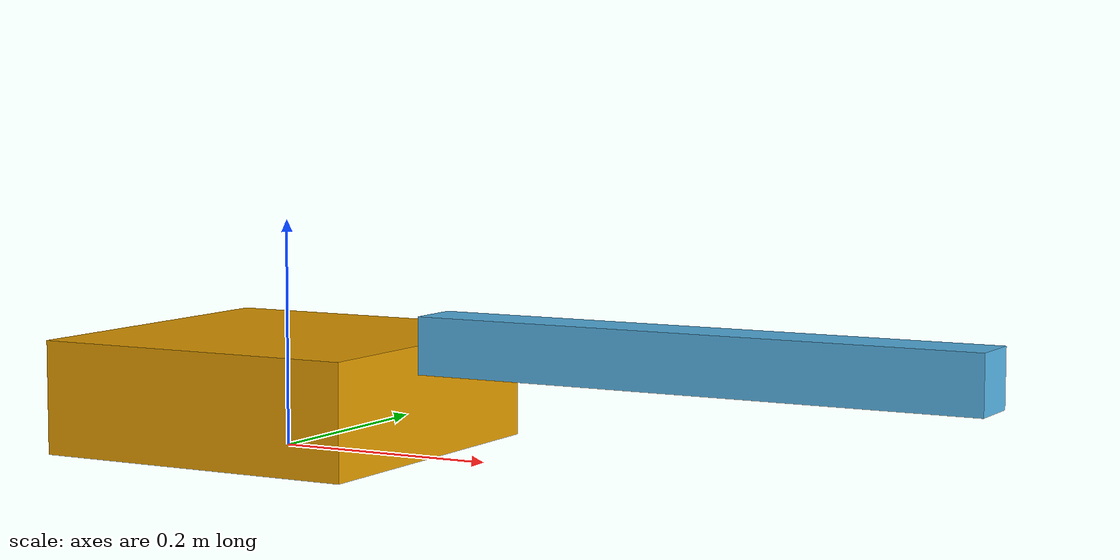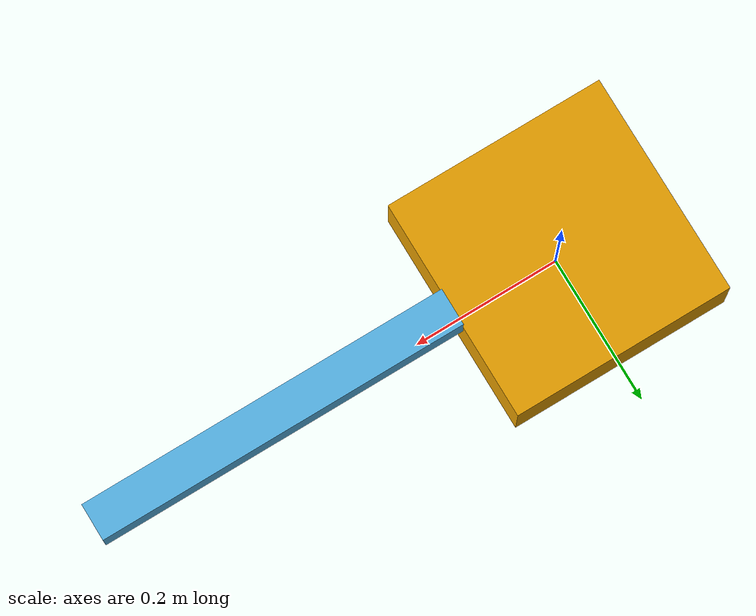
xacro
<?xml version="1.0"?>
<robot xmlns:xacro="http://www.ros.org/wiki/xacro" name="one_joint_arm">

  <link name="base_link">
    <visual>
      <geometry>
        <box size="0.3 0.3 0.1"/>
      </geometry>
      <origin xyz="0 0 0.05"/>
    </visual>
  </link>

  <link name="arm_link">
    <visual>
      <geometry>
        <box size="0.5 0.05 0.05"/>
      </geometry>
      <origin xyz="0.25 0 0"/>
    </visual>
  </link>

  <joint name="joint1" type="revolute">
    <parent link="base_link"/>
    <child link="arm_link"/>
    <origin xyz="0.15 0 0.1" rpy="0 0 0"/>
    <axis xyz="0 0 1"/>
    <limit lower="-1.57" upper="1.57" effort="10.0" velocity="1.0"/>
  </joint>

  <ros2_control name="FakeSystem" type="system">
    <hardware>
      <plugin>mock_components/GenericSystem</plugin>
    </hardware>

    <joint name="joint1">
      <command_interface name="position"/>
      <state_interface name="position">
        <param name="initial_value">0.0</param>
      </state_interface>
      <state_interface name="velocity"/>
    </joint>
  </ros2_control>

</robot>
